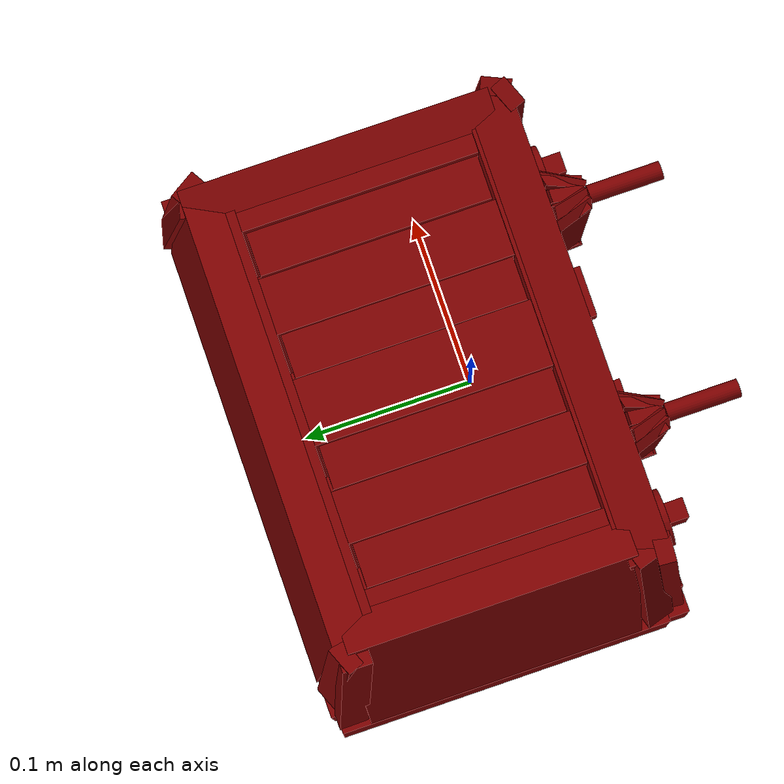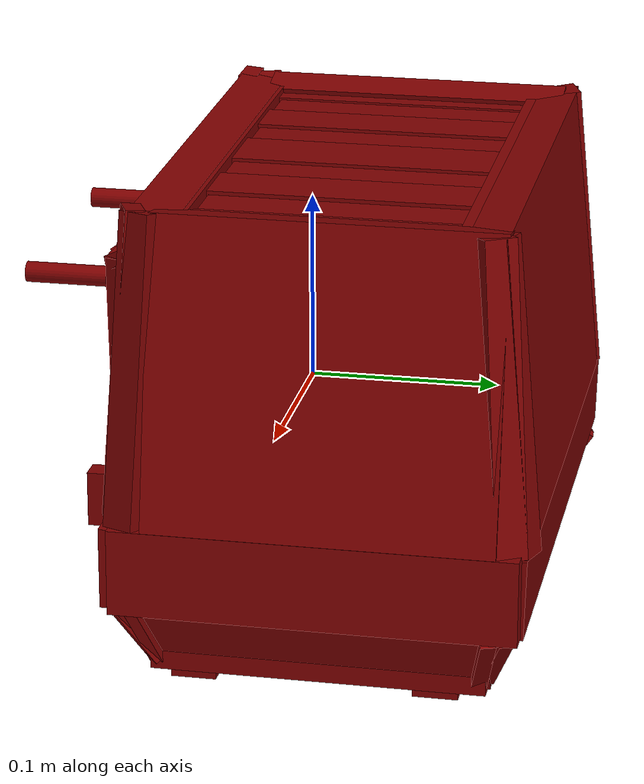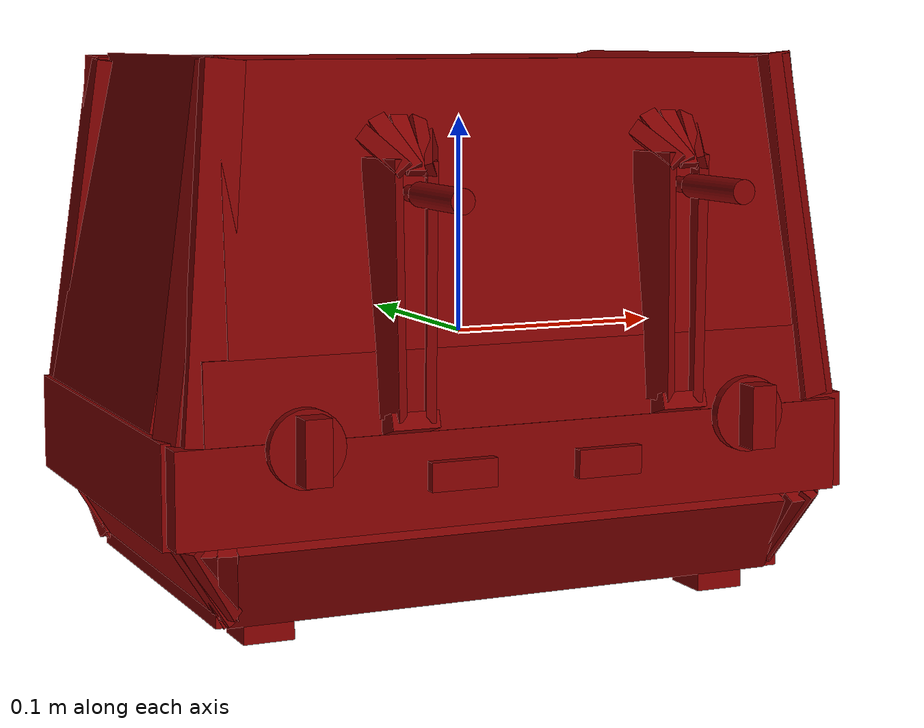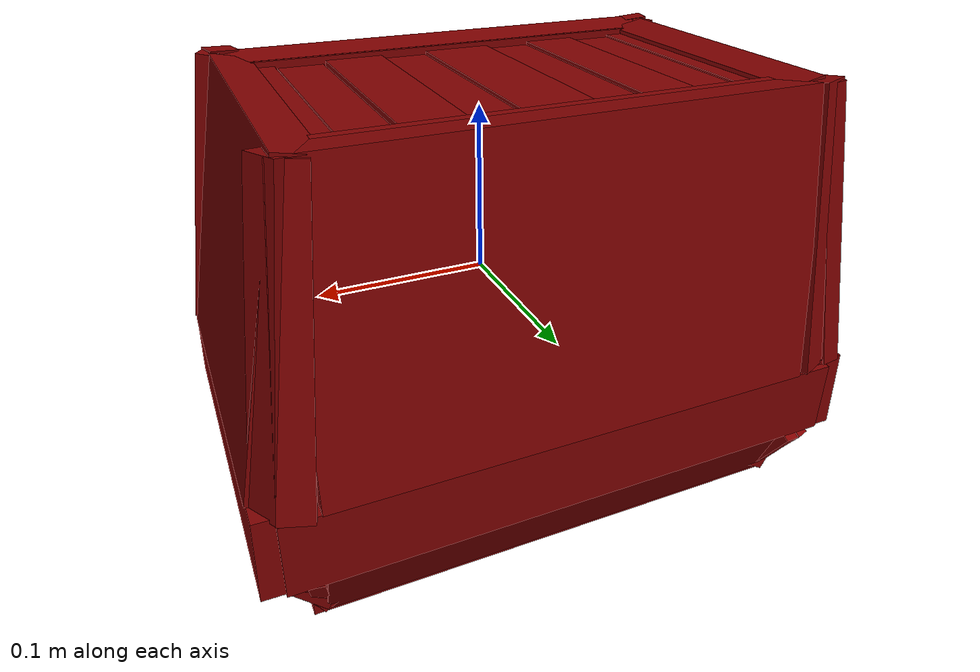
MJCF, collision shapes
<?xml version='1.0' encoding='UTF-8'?>
<mujoco model="model">
  <compiler angle="radian"/>
  <asset>
    <mesh file="visuals/Body001.obj" name="Body001_vis"/>
    <mesh file="visuals/Body002.obj" name="Body002_vis"/>
    <mesh file="visuals/Button001.obj" name="Button001_vis"/>
    <mesh file="visuals/Button002.obj" name="Button002_vis"/>
    <mesh file="visuals/Knob001.obj" name="Knob001_vis"/>
    <mesh file="visuals/Knob002.obj" name="Knob002_vis"/>
    <mesh file="visuals/Lever001.obj" name="Lever001_vis"/>
    <mesh file="visuals/Lever002.obj" name="Lever002_vis"/>
    <texture file="visuals/T_BC001.png" name="Body001_material" type="2d"/>
    <material name="Body001_material" rgba="1 1 1 1.0" texture="Body001_material" shininess="1" specular="1"/>
    <texture file="visuals/T_BC001.png" name="Body002_material" type="2d"/>
    <material name="Body002_material" rgba="1 1 1 1.0" texture="Body002_material" shininess="2" specular="2"/>
    <texture file="visuals/T_BC001.png" name="Button001_material" type="2d"/>
    <material name="Button001_material" rgba="1 1 1 1.0" texture="Button001_material" shininess="1" specular="1"/>
    <texture file="visuals/T_BC001.png" name="Button002_material" type="2d"/>
    <material name="Button002_material" rgba="1 1 1 1.0" texture="Button002_material" shininess="1" specular="1"/>
    <texture file="visuals/T_BC001.png" name="Knob001_material" type="2d"/>
    <material name="Knob001_material" rgba="1 1 1 1.0" texture="Knob001_material" shininess="1" specular="1"/>
    <texture file="visuals/T_BC001.png" name="Knob002_material" type="2d"/>
    <material name="Knob002_material" rgba="1 1 1 1.0" texture="Knob002_material" shininess="1" specular="1"/>
    <texture file="visuals/T_BC001.png" name="Lever001_material" type="2d"/>
    <material name="Lever001_material" rgba="1 1 1 1.0" texture="Lever001_material" shininess="1" specular="1"/>
    <texture file="visuals/T_BC001.png" name="Lever002_material" type="2d"/>
    <material name="Lever002_material" rgba="1 1 1 1.0" texture="Lever002_material" shininess="1" specular="1"/>
  </asset>
  <default>
    <default class="visual">
      <geom conaffinity="0" contype="0" group="1" type="mesh"/>
    </default>
    <default class="collision">
      <geom group="0" rgba="0.5 0 0 0.5"/>
    </default>
    <default class="spawn">
      <geom group="0" rgba="1 1 1 0.5" contype="0" conaffinity="0"/>
      <site group="0" rgba="1 1 1 0.5"/>
    </default>
    <default class="region">
      <geom group="1" conaffinity="0" contype="0" rgba="0 1 0 0"/>
    </default>
  </default>
  <worldbody>
    <body>
      <body name="object">
        <geom mesh="Body001_vis" type="mesh" solimp="0.998 0.998 0.001" solref="0.001 1" density="100" friction="0.95 0.3 0.1" class="visual" material="Body001_material"/>
        <geom class="collision" type="box" pos="-0.00044674641685560346 0.12026488780975342 -0.09392673522233963" size="0.13447068631649017 0.00393036799505353 0.019632775336503983" quat="0.9799838662147522 -0.1990768313407898 -0.0 0.0"/>
        <geom class="collision" type="box" pos="-0.00044674641685560346 -0.06252574175596237 -0.09489482641220093" size="0.13447068631649017 0.00393036799505353 0.019632775336503983" quat="0.975192666053772 0.22135789692401886 0.0 0.0"/>
        <geom class="collision" type="box" pos="0.1409631073474884 0.030339915305376053 -0.09131582826375961" size="0.006311427336186171 0.08797916024923325 0.02123778685927391" quat="0.9626746773719788 0.0 0.2706611156463623 0.0"/>
        <geom class="collision" type="box" pos="-0.14122942090034485 0.030339915305376053 -0.09276559948921204" size="0.006311427336186171 0.08797916024923325 0.02123778685927391" quat="0.9673653244972229 0.0 -0.2533857524394989 0.0"/>
        <geom class="collision" type="box" pos="-0.11325013637542725 -0.03796686977148056 -0.11897148936986923" size="0.011780587956309319 0.011780587956309319 0.005922116804867983" quat="1.0 0.0 0.0 0.0"/>
        <geom class="collision" type="box" pos="0.11429183185100555 -0.03796686977148056 -0.11897148936986923" size="0.011780587956309319 0.011780587956309319 0.005922116804867983" quat="1.0 0.0 0.0 0.0"/>
        <geom class="collision" type="box" pos="-0.11325013637542725 0.0884881243109703 -0.11897148936986923" size="0.011780587956309319 0.011780587956309319 0.005922116804867983" quat="1.0 0.0 0.0 0.0"/>
        <geom class="collision" type="box" pos="0.11429183185100555 0.0884881243109703 -0.11897148936986923" size="0.011780587956309319 0.011780587956309319 0.005922116804867983" quat="1.0 0.0 0.0 0.0"/>
        <geom class="collision" type="box" pos="0.13939955830574036 0.03420979157090187 0.04827224835753441" size="0.010647835209965706 0.08951014280319214 0.0805027037858963" quat="0.9954463839530945 0.0 -0.09532330930233002 0.0"/>
        <geom class="collision" type="box" pos="0.15416470170021057 0.03115106374025345 -0.052045706659555435" size="0.010647837072610855 0.10399692505598068 0.02255273051559925" quat="0.9999216794967651 0.0 -0.012517278082668781 0.0"/>
        <geom class="collision" type="box" pos="-0.1394502818584442 0.03421943262219429 0.048004716634750366" size="0.01064783614128828 0.0826282873749733 0.0805027037858963" quat="0.9953948855400085 0.0 0.09585954248905182 0.0"/>
        <geom class="collision" type="box" pos="-0.15400944650173187 0.034196414053440094 -0.053195323795080185" size="0.011610319837927818 0.10006161034107208 0.02299097552895546" quat="1.0 0.0 0.0 0.0"/>
        <geom class="collision" type="box" pos="0.0008880893001332879 0.11890549212694168 0.04633348807692528" size="0.13319306075572968 0.012511109001934528 0.0805027037858963" quat="0.9988362789154053 0.048229116946458817 0.0 0.0"/>
        <geom class="collision" type="box" pos="-0.00032237544655799866 0.1267222762107849 -0.05385943502187729" size="0.1542205959558487 0.010496157221496105 0.02122410573065281" quat="0.9998803734779358 -0.015469263307750225 -0.0 0.0"/>
        <geom class="collision" type="box" pos="-0.004979799035936594 -0.06478356570005417 -0.01428462378680706" size="0.1455572247505188 0.012511109933257103 0.0184781551361084" quat="0.9997701048851013 -0.02144211158156395 -0.0 0.0"/>
        <geom class="collision" type="box" pos="-0.002841375535354018 -0.06756524741649628 -0.052719760686159134" size="0.16078045964241028 0.01082755159586668 0.02138606086373329" quat="1.0 0.0 0.0 0.0"/>
        <geom class="collision" type="box" pos="-0.0026012654416263103 -0.05928958207368851 0.06512191146612167" size="0.1367025375366211 0.012511109001934528 0.061788905411958694" quat="0.9992153644561768 -0.039606720209121704 -0.0 0.0"/>
        <geom class="collision" type="box" pos="0.00032845139503479004 0.02971804141998291 -0.108138307929039" size="0.1403084397315979 0.08675547689199448 0.005922154523432255" quat="1.0 0.0 0.0 0.0"/>
        <geom class="collision" type="box" pos="0.1464659571647644 -0.057390689849853516 -0.09268210083246231" size="0.0031624019611626863 0.004117121919989586 0.021120190620422363" quat="0.9464960694313049 0.059724461287260056 0.27581343054771423 -0.15654131770133972"/>
        <geom class="collision" type="box" pos="-0.10911621898412704 0.02752969041466713 0.046505801379680634" size="0.005207378417253494 0.07103536278009415 0.07607979327440262" quat="1.0 0.0 0.0 0.0"/>
        <geom class="collision" type="box" pos="-0.06283487379550934 0.02752969041466713 0.046795669943094254" size="0.014857487753033638 0.07103536278009415 0.07636881619691849" quat="1.0 0.0 0.0 0.0"/>
        <geom class="collision" type="box" pos="-0.002341354265809059 0.02752969041466713 0.046795669943094254" size="0.019084839150309563 0.07103536278009415 0.07636958360671997" quat="1.0 0.0 0.0 0.0"/>
        <geom class="collision" type="box" pos="0.05908895283937454 0.02752969041466713 0.046795669943094254" size="0.016136080026626587 0.07103569805622101 0.07636921852827072" quat="1.0 0.0 0.0 0.0"/>
        <geom class="collision" type="box" pos="0.10914602130651474 0.02752969041466713 0.046505801379680634" size="0.005973801016807556 0.07103536278009415 0.07607963681221008" quat="1.0 0.0 0.0 0.0"/>
        <geom class="collision" type="box" pos="-0.07091841846704483 -0.07970783859491348 0.031119726598262787" size="0.002195649314671755 0.010753877460956573 0.055544283241033554" quat="0.987780749797821 0.00385268940590322 -0.011701609008014202 0.15536220371723175"/>
        <geom class="collision" type="box" pos="-0.05002918466925621 -0.08060146123170853 0.03003319539129734" size="0.0021823113784193993 0.010753880254924297 0.05554429441690445" quat="0.9844239354133606 0.00915802177041769 0.001750251860357821 -0.1755637228488922"/>
        <geom class="collision" type="box" pos="-0.06045627221465111 -0.0799240991473198 0.0919889509677887" size="0.003909409511834383 0.015574048273265362 0.0017762052593752742" quat="0.9199158549308777 0.39211586117744446 0.0 0.0"/>
        <geom class="collision" type="box" pos="-0.06045627221465111 -0.0810844674706459 -0.026527995243668556" size="0.010975378565490246 0.008613020181655884 0.0038106536958366632" quat="0.9888113141059875 -0.1491716057062149 -0.0 0.0"/>
        <geom class="collision" type="box" pos="0.14365535974502563 -0.061014533042907715 -0.09142813086509705" size="0.0031624017283320427 0.004117121919989586 0.0205256137996912" quat="0.9081395864486694 0.11606573313474655 0.294817179441452 -0.2736678719520569"/>
        <geom class="collision" type="box" pos="0.13684366643428802 -0.06407270580530167 -0.09433968365192413" size="0.0031624024268239737 0.004117121919989586 0.02069542184472084" quat="0.7354452013969421 0.18512742221355438 0.2251061499118805 -0.6116988062858582"/>
        <geom class="collision" type="box" pos="0.14234477281570435 -0.06447140127420425 -0.09276073426008224" size="0.0031624017283320427 0.004117121919989586 0.0205256137996912" quat="0.8550456166267395 0.1904042661190033 0.23266524076461792 -0.42250457406044006"/>
        <geom class="collision" type="box" pos="-0.13692668080329895 -0.06513560563325882 -0.09358090162277222" size="0.0031624019611626863 0.004117121919989586 0.021120190620422363" quat="0.5760980248451233 0.2337408810853958 0.15813055634498596 -0.7671186327934265"/>
        <geom class="collision" type="box" pos="-0.14067403972148895 -0.062491945922374725 -0.09232693165540695" size="0.0031624017283320427 0.004117121919989586 0.0205256137996912" quat="0.46744412183761597 0.28760191798210144 0.13294190168380737 -0.8252924084663391"/>
        <geom class="collision" type="box" pos="-0.1449662446975708 -0.05844539776444435 -0.09357921779155731" size="0.0031624024268239737 0.004117121919989586 0.021619513630867004" quat="0.10904650390148163 0.2893645167350769 0.03482958301901817 -0.9503493905067444"/>
        <geom class="collision" type="box" pos="-0.1440049558877945 -0.06467307358980179 -0.0912436842918396" size="0.0031624019611626863 0.004117121919989586 0.0205256137996912" quat="0.2321225255727768 0.2970905303955078 0.07213438302278519 -0.923392117023468"/>
        <geom class="collision" type="box" pos="-0.14460401237010956 0.1171574667096138 -0.09381018579006195" size="0.0031624019611626863 0.004117121919989586 0.021120190620422363" quat="0.20623697340488434 -0.2722799777984619 0.07418638467788696 0.9369238615036011"/>
        <geom class="collision" type="box" pos="-0.14142736792564392 0.12046512961387634 -0.09255621582269669" size="0.0031624017283320427 0.004117121919989586 0.0205256137996912" quat="0.3211776614189148 -0.2882862091064453 0.1314513236284256 0.8924441337585449"/>
        <geom class="collision" type="box" pos="-0.13678191602230072 0.1241006925702095 -0.09380850195884705" size="0.0031624019611626863 0.004117121919989586 0.0198535043746233" quat="0.6496307253837585 -0.2150305062532425 0.1967407464981079 0.7021644115447998"/>
        <geom class="collision" type="box" pos="-0.14288872480392456 0.12300888448953629 -0.09319306164979935" size="0.0031624017283320427 0.004117121919989586 0.018914194777607918" quat="0.5489631295204163 -0.2483569085597992 0.1782834827899933 0.77792888879776"/>
        <geom class="collision" type="box" pos="0.13727596402168274 0.12121548503637314 -0.09327942878007889" size="0.0031624019611626863 0.004117121919989586 0.021120190620422363" quat="0.7339819073677063 -0.1708524525165558 0.2246096134185791 0.6177625060081482"/>
        <geom class="collision" type="box" pos="0.14129310846328735 0.11900316923856735 -0.09202545881271362" size="0.0031624017283320427 0.004117121919989586 0.0205256137996912" quat="0.7980930209159851 -0.14869031310081482 0.2797849476337433 0.5125027894973755"/>
        <geom class="collision" type="box" pos="0.14600712060928345 0.1154569610953331 -0.09327774494886398" size="0.0031624017283320427 0.004117121919989586 0.0198535043746233" quat="0.9428374171257019 -0.050826843827962875 0.2869871258735657 0.16159389913082123"/>
        <geom class="collision" type="box" pos="0.14337195456027985 0.12107310444116592 -0.09266230463981628" size="0.0031624017283320427 0.004117121919989586 0.018914194777607918" quat="0.9090948104858398 -0.08850280195474625 0.29263195395469666 0.2829849123954773"/>
        <geom class="collision" type="box" pos="0.13670752942562103 -0.06878319382667542 0.04974736273288727" size="0.00865440908819437 0.005012230481952429 0.08033323287963867" quat="0.9791340827941895 -0.03711995109915733 -0.05296817794442177 0.19264717400074005"/>
        <geom class="collision" type="box" pos="0.14546415209770203 -0.0627499595284462 0.04974736273288727" size="0.008654408156871796 0.005012230947613716 0.08033324033021927" quat="0.8364589214324951 -0.05639462545514107 -0.053623031824827194 0.5424764752388"/>
        <geom class="collision" type="box" pos="0.14436012506484985 0.12271402776241302 0.04757818952202797" size="0.00865440908819437 0.005012230481952429 0.08033324033021927" quat="0.4838537871837616 -0.03958134725689888 -0.06159912422299385 0.8720805048942566"/>
        <geom class="collision" type="box" pos="0.13612137734889984 0.12779466807842255 0.046435002237558365" size="0.00865440908819437 0.005012230481952429 0.08033323287963867" quat="0.12437501549720764 -0.04715656861662865 -0.055987101048231125 0.9895314574241638"/>
        <geom class="collision" type="box" pos="-0.13884337246418 0.1251833438873291 0.04757818952202797" size="0.00865440908819437 0.0050122300162911415 0.08033324033021927" quat="0.1917499154806137 -0.014288317412137985 0.0478287898004055 -0.9801735877990723"/>
        <geom class="collision" type="box" pos="-0.14797596633434296 0.12035005539655685 0.046435002237558365" size="0.00865440908819437 0.005012230481952429 0.08033323287963867" quat="0.7093334197998047 -0.015710432082414627 0.07149460166692734 -0.7010619044303894"/>
        <geom class="collision" type="box" pos="-0.1466149240732193 -0.05657394975423813 0.04757818952202797" size="0.00865440908819437 0.005012230947613716 0.08033324033021927" quat="0.802619218826294 -0.058406613767147064 0.04670156538486481 -0.5917854309082031"/>
        <geom class="collision" type="box" pos="-0.14259599149227142 -0.0674305334687233 0.04796357452869415" size="0.00865440908819437 0.005012230481952429 0.08033323287963867" quat="0.9979035258293152 -0.03159482032060623 0.043148621916770935 -0.03644896671175957"/>
        <geom class="collision" type="box" pos="-0.06592980772256851 -0.07991290837526321 0.09256616234779358" size="0.0038907870184630156 0.015574048273265362 0.0017762051429599524" quat="0.8960186839103699 0.3767300546169281 -0.23089206218719482 0.04374747350811958"/>
        <geom class="collision" type="box" pos="-0.07169084250926971 -0.0791320875287056 0.08981968462467194" size="0.003890787251293659 0.015574049204587936 0.0017762051429599524" quat="0.87903892993927 0.3058508634567261 -0.3611479699611664 0.05760198086500168"/>
        <geom class="collision" type="box" pos="-0.05315784737467766 -0.07887665927410126 0.09104868769645691" size="0.003909409511834383 0.015574048273265362 0.0017762052593752742" quat="0.8970921039581299 0.3964369595050812 0.1949540227651596 0.007511969655752182"/>
        <geom class="collision" type="box" pos="-0.049283940345048904 -0.07934129238128662 0.08806617558002472" size="0.003909409511834383 0.015574048273265362 0.0017762052593752742" quat="0.7933098077774048 0.2993110120296478 0.5294592380523682 -0.02730184607207775"/>
        <geom class="collision" type="box" pos="0.05896570533514023 -0.07970783859491348 0.031119726598262787" size="0.002195649314671755 0.010753877460956573 0.055544283241033554" quat="0.9849674105644226 0.006337068509310484 -0.008766613900661469 0.17240123450756073"/>
        <geom class="collision" type="box" pos="0.0806637853384018 -0.08060146123170853 0.03003319539129734" size="0.0021823113784193993 0.010753880254924297 0.05554429441690445" quat="0.9844239354133606 0.00915802177041769 0.001750251860357821 -0.1755637228488922"/>
        <geom class="collision" type="box" pos="0.0702366977930069 -0.0799240991473198 0.0919889509677887" size="0.003909409511834383 0.015574048273265362 0.0017762052593752742" quat="0.9199158549308777 0.39211586117744446 0.0 0.0"/>
        <geom class="collision" type="box" pos="0.0702366977930069 -0.0810844674706459 -0.026527995243668556" size="0.010975378565490246 0.008613020181655884 0.0038106536958366632" quat="0.9888113141059875 -0.1491716057062149 -0.0 0.0"/>
        <geom class="collision" type="box" pos="0.06476316601037979 -0.07991290837526321 0.09256616234779358" size="0.0038907870184630156 0.015574048273265362 0.0017762051429599524" quat="0.8960186839103699 0.3767300546169281 -0.23089206218719482 0.04374747350811958"/>
        <geom class="collision" type="box" pos="0.05900213122367859 -0.0791320875287056 0.08981968462467194" size="0.003890787251293659 0.015574049204587936 0.0017762051429599524" quat="0.87903892993927 0.3058508634567261 -0.3611479699611664 0.05760198086500168"/>
        <geom class="collision" type="box" pos="0.07753512263298035 -0.07887665927410126 0.09104868769645691" size="0.003909409511834383 0.015574048273265362 0.0017762052593752742" quat="0.8970921039581299 0.3964369595050812 0.1949540227651596 0.007511969655752182"/>
        <geom class="collision" type="box" pos="0.0814090371131897 -0.07934129238128662 0.08806617558002472" size="0.003909409511834383 0.015574048273265362 0.0017762052593752742" quat="0.7933098077774048 0.2993110120296478 0.5294592380523682 -0.02730184607207775"/>
        <geom class="collision" type="box" pos="0.0 -0.048256926238536835 0.042633622884750366" size="0.11826896667480469 0.008620768785476685 0.08299705386161804" quat="1.0 0.0 0.0 0.0"/>
        <geom class="collision" type="box" pos="0.0 0.10581551492214203 0.042633622884750366" size="0.11826896667480469 0.008620768785476685 0.08299705386161804" quat="1.0 0.0 0.0 0.0"/>
        <body name="Body002">
          <geom mesh="Body002_vis" type="mesh" solimp="0.998 0.998 0.001" solref="0.001 1" density="100" friction="0.95 0.3 0.1" class="visual" material="Body002_material"/>
        </body>
        <body name="Button001">
          <joint axis="0.0 1.0 0.0" pos="-0.03575551509857178 -0.08017919957637787 -0.05030425637960434" limited="true" name="Button001_joint" range="0.0 0.0034999999999999996" type="slide" damping="1" frictionloss="1" armature=".01" stiffness="0.05"/>
          <geom mesh="Button001_vis" type="mesh" solimp="0.998 0.998 0.001" solref="0.001 1" density="100" friction="0.95 0.3 0.1" class="visual" material="Button001_material"/>
          <geom class="collision" type="box" pos="-0.03601318597793579 -0.08363092690706253 -0.05012350156903267" size="0.01551173534244299 0.0025674805510789156 0.006430113222450018" quat="1.0 0.0 0.0 0.0"/>
        </body>
        <body name="Button002">
          <joint axis="0.0 1.0 0.0" pos="0.03482136130332947 -0.08017919957637787 -0.05030425637960434" limited="true" name="Button002_joint" range="0.0 0.0034999999999999996" type="slide" damping="1" frictionloss="1" armature=".01" stiffness="0.05"/>
          <geom mesh="Button002_vis" type="mesh" solimp="0.998 0.998 0.001" solref="0.001 1" density="100" friction="0.95 0.3 0.1" class="visual" material="Button002_material"/>
          <geom class="collision" type="box" pos="0.03484227508306503 -0.08363092690706253 -0.05012350156903267" size="0.015511740930378437 0.0025674805510789156 0.006430113222450018" quat="1.0 0.0 0.0 0.0"/>
        </body>
        <body name="Knob001">
          <joint axis="0.0 1.0 0.0" pos="-0.10707026720046997 -0.08434509485960007 -0.03358955308794975" limited="true" name="Knob001_joint" range="0.0 5.201081170943102" type="hinge" damping="0.05" frictionloss="0.1" armature="0.001" springref="-0.01"/>
          <geom mesh="Knob001_vis" type="mesh" solimp="0.998 0.998 0.001" solref="0.001 1" density="100" friction="0.95 0.3 0.1" class="visual" material="Knob001_material"/>
          <geom class="collision" type="cylinder" pos="-0.10715775191783905 -0.08115532994270325 -0.03383712098002434" size="0.017344027757644653 0.0025102447252720594" quat="0.7071068286895752 -0.7071067690849304 -0.0 0.0" density="0.001"/>
          <geom class="collision" type="box" pos="-0.10666624456644058 -0.08937132358551025 -0.03361452743411064" size="0.006066915113478899 0.005955501925200224 0.014460868202149868" quat="1.0 0.0 0.0 0.0" density="0.001"/>
        </body>
        <body name="Knob002">
          <joint axis="0.0 1.0 0.0" pos="0.10801281034946442 -0.08434509485960007 -0.03433068469166756" limited="true" name="Knob002_joint" range="0.0 5.201081170943102" type="hinge" damping="0.05" frictionloss="0.1" armature="0.001" springref="-0.01"/>
          <geom mesh="Knob002_vis" type="mesh" solimp="0.998 0.998 0.001" solref="0.001 1" density="100" friction="0.95 0.3 0.1" class="visual" material="Knob002_material"/>
          <geom class="collision" type="box" pos="0.10850415378808975 -0.08937132358551025 -0.03399918973445892" size="0.006066915113478899 0.005955501925200224 0.014460868202149868" quat="1.0 0.0 0.0 0.0" density="0.001"/>
          <geom class="collision" type="cylinder" pos="0.10801264643669128 -0.08115532994270325 -0.03422178328037262" size="0.017344027757644653 0.0025102447252720594" quat="0.7071068286895752 -0.7071067690849304 -0.0 0.0" density="0.001"/>
        </body>
        <body name="Lever001">
          <joint axis="0.0 0.0 -1.0" pos="-0.06070128083229065 -0.09401111304759979 0.0719827339053154" limited="true" name="Lever001_joint" range="0.0 0.085" type="slide" damping="1" frictionloss="1" armature=".01" stiffness="2" springref="-2"/>
          <geom mesh="Lever001_vis" type="mesh" solimp="0.998 0.998 0.001" solref="0.001 1" density="100" friction="0.95 0.3 0.1" class="visual" material="Lever001_material"/>
          <geom class="collision" type="cylinder" pos="-0.06061257794499397 -0.11512642353773117 0.07208579778671265" size="0.005340807605534792 0.021487968042492867" quat="0.7071068286895752 -0.7071067690849304 -0.0 0.0" name="sideL_lever_knob"/>
          <geom class="collision" type="cylinder" pos="-0.060659583657979965 -0.09300929307937622 0.07191453129053116" size="0.0035236342810094357 0.010406561195850372" quat="0.7071068286895752 -0.7071067690849304 -0.0 0.0"/>
          <geom class="collision" type="box" pos="-0.0908137634396553 0.028542371466755867 0.11743190884590149" size="0.012499998323619366 0.0668611153960228 0.00421091727912426" quat="1.0 0.0 0.0 0.0" name="sideL_slotL_floor"/>
          <geom class="collision" type="box" pos="-0.03456781432032585 0.028542371466755867 0.11743190884590149" size="0.012499998323619366 0.0668611153960228 0.0042109061032533646" quat="1.0 0.0 0.0 0.0" name="sideL_slotR_floor"/>
        </body>
        <body name="Lever002">
          <joint axis="0.0 0.0 -1.0" pos="0.06959846615791321 -0.09401111304759979 0.0719827339053154" limited="true" name="Lever002_joint" range="0.0 0.085" type="slide" damping="1" frictionloss="1" armature=".01" stiffness="2" springref="-2"/>
          <geom mesh="Lever002_vis" type="mesh" solimp="0.998 0.998 0.001" solref="0.001 1" density="100" friction="0.95 0.3 0.1" class="visual" material="Lever002_material"/>
          <geom class="collision" type="cylinder" pos="0.06966513395309448 -0.11512642353773117 0.07203587889671326" size="0.005340807605534792 0.021487968042492867" quat="0.7071068286895752 -0.7071067690849304 -0.0 0.0" name="sideR_lever_knob"/>
          <geom class="collision" type="cylinder" pos="0.06956285983324051 -0.09300929307937622 0.0720156580209732" size="0.0035236342810094357 0.010406561195850372" quat="0.7071068286895752 -0.7071067690849304 -0.0 0.0"/>
          <geom class="collision" type="box" pos="0.029887543991208076 0.028542371466755867 0.11743190884590149" size="0.012499998323619366 0.06686118245124817 0.00421091727912426" quat="1.0 0.0 0.0 0.0" name="sideR_slotL_floor"/>
          <geom class="collision" type="box" pos="0.08926278352737427 0.028542371466755867 0.11743190884590149" size="0.012499998323619366 0.06686105579137802 0.00421091029420495" quat="1.0 0.0 0.0 0.0" name="sideR_slotR_floor"/>
        </body>
        <geom class="region" name="reg_main" type="box" pos="3.725290298461914e-09 0.028689749538898468 0.0" size="0.16293542087078094 0.10625100880861282 0.12476745247840881"/>
      </body>
    </body>
  </worldbody>
  <actuator>
    <motor name="Button001_joint_actuator" joint="Button001_joint" gear="0.5"/>
    <motor name="Button002_joint_actuator" joint="Button002_joint" gear="0.5"/>
    <motor name="Knob001_joint_actuator" joint="Knob001_joint" gear="0.5"/>
    <motor name="Knob002_joint_actuator" joint="Knob002_joint" gear="0.5"/>
    <motor name="Lever001_joint_actuator" joint="Lever001_joint" gear="0.5"/>
    <motor name="Lever002_joint_actuator" joint="Lever002_joint" gear="0.5"/>
  </actuator>
</mujoco>
